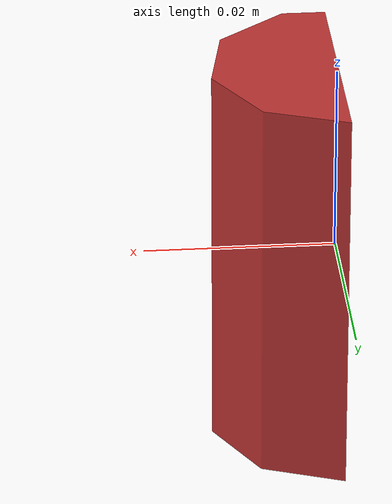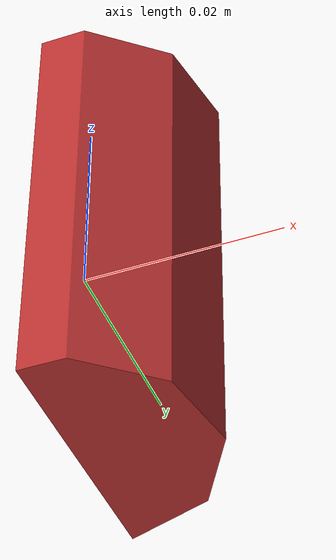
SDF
<?xml version="1.0" ?>
<sdf version='1.6'>
  <model name='cyl_1'>
    <link name='cyl_1'>
      <pose frame=''>0 0 0 0 0 0</pose>
      <inertial>
        <pose frame=''>0.005408 -0.000000 -0.000000 0. 0. 0.</pose>
        <mass>1.06412705259e-05</mass>
        <inertia>
          <ixx>1.97869036016e-09</ixx>
          <ixy>-7.43341607648e-13</ixy>
          <ixz>2.38581936346e-26</ixz>
          <iyy>1.66748646243e-09</iyy>
          <iyz>-3.23214532499e-27</iyz>
          <izz>5.53088420197e-10</izz>
        </inertia>
      </inertial>
      <visual>
        <pose frame=''>0 0 0 0 0 0</pose>
        <geometry>
          <mesh>
            <scale>1 1 1</scale>
            <uri>models/half_carrot_models/meshes/cyl_1.obj</uri>
          </mesh>
        </geometry>
        <material>
          <ambient>0.75 0.2 0.2 1.0</ambient>
          <diffuse>0.75 0.2 0.2 1.0</diffuse>
          <specular>0.01 0.01 0.01 1</specular>
          <emissive>0 0 0 1</emissive>
          <shader type='vertex'>
            <normal_map>__default__</normal_map>
          </shader>
        </material>
      </visual>
      <collision>
        <pose frame=''>0 0 0 0 0 0</pose>
        <geometry>
          <mesh>
            <scale>1 1 1</scale>
            <uri>models/half_carrot_models/meshes/cyl_1.obj</uri>
          </mesh>
        </geometry>
      </collision>
      <gravity>1</gravity>
      <self_collide>0</self_collide>
    </link>
  </model>
</sdf>
